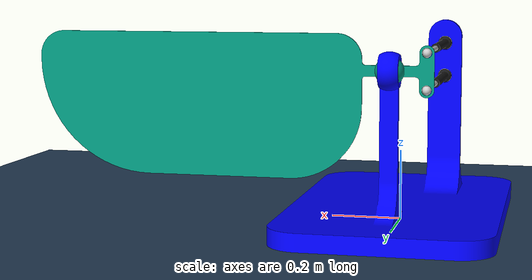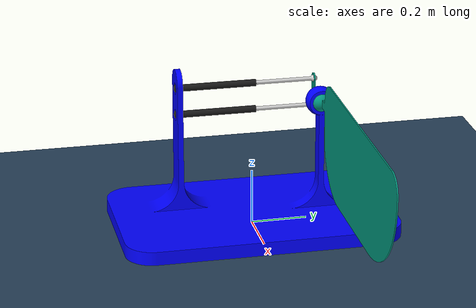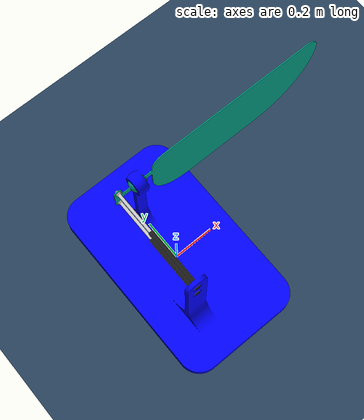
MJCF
<mujoco model="WingHinge">

  <option gravity="0 0 -1" timestep="0.005"/>

  <asset>
    <mesh file="./mesh/base.stl" />
    <mesh file="./mesh/wing.stl" />
    <mesh file="./mesh/actuator_base.stl" />
    <mesh file="./mesh/actuator_pushrod.stl" />

    <material name="base_color" rgba="0 0 1 1" />
    <material name="wing_color" rgba="0.0 0.6 0.5 1" />
    <material name="actuator_rod_color" rgba="0.8 0.8 0.8 1" />
    <material name="actuator_base_color" rgba="0.1 0.1 0.1 1" />

    <texture name="grid" type="2d" builtin="checker" width="512" height="512" rgb1=".1 .2 .3" rgb2=".2 .3 .4"/>
    <material name="grid" texture="grid" texrepeat="10 10" texuniform="true" reflectance=".2"/>
  </asset>

  <worldbody>
    <geom name="floor" size="0 0 .05" type="plane" material="grid" condim="3"/>
    <light name="spotlight" mode="targetbodycom" target="base" diffuse="0.8 0.8 0.8" specular="0.2 0.2 0.2"
        pos="0 -20 20" cutoff="20"/>
    <body name="base" pos="0 0 0">
        <freejoint name="base_joint"/>
        <geom name="base_mesh" type="mesh" mesh="base" pos="0 0 0" contype="1" conaffinity="1" material="base_color"/>
        <body name="actuator_base_lower" pos="-0.10 -0.265 0.40">
            <joint name="actuator_base_lower" type="ball" pos="0 0 0" stiffness="0.0" damping="0.0" />
            <geom name="actuator_base_lower_mesh" type="mesh" mesh="actuator_base" pos="0 0 0" contype="2" conaffinity="2"
                material="actuator_base_color"/>
            <body name="actuator_rod_lower" pos="0 0.22750 0">
                <joint name="actuator_lower_slider" type="slide" pos="0 0 0 " axis="0 1 0" range="-1 1" limited="true" springref="0"/>
                <geom name="actuator_rod_lower_mesh" type="mesh" mesh="actuator_pushrod" pos="0 0 0" contype="4"
                    conaffinity="4" material="actuator_rod_color" />
            </body>
        </body>
        <body name="actuator_base_upper" pos="-0.10 -0.265 0.50">
            <joint name="actuator_base_upper" type="ball" pos="0 0 0" stiffness="0.0" damping="0.0" />
            <geom name="actuator_base_upper_mesh" type="mesh" mesh="actuator_base" pos="0 0 0" contype="8" conaffinity="8"
                material="actuator_base_color"/>
            <body name="actuator_rod_upper" pos="0 0.22750 0">
                <joint name="actuator_upper_slider" type="slide" pos="0 0 0 " axis="0 1 0" range="-1 1" limited="true" springref="0"/>
                <geom name="actuator_rod_upper_mesh" type="mesh" mesh="actuator_pushrod" pos="0 0 0" contype="16"
                    conaffinity="16" material="actuator_rod_color" />
            </body>
        </body>
        <body name="wing" pos="0.0 0.25 0.45">
            <joint name="wing_joint_z" type="hinge" pos="0 0 0" axis="0 0 1" stiffness="0.0" damping="0.0"/>
            <joint name="wing_joint_x" type="hinge" pos="0 0 0" axis="1 0 0" stiffness="0.0" damping="0.0"/>
            <geom name="wing_mesh" type="mesh" mesh="wing" pos="0 0 0" euler="90 0 0" contype="32" conaffinity="32"
                material="wing_color"/>
            <inertial pos="0 0 0" mass="0.01" diaginertia="0.01 0.01 0.01"/>
        </body>
    </body>
  </worldbody>

  <equality>
      <connect name="connect_rod_upper_to_wing" active="true" body1="wing" body2="actuator_rod_upper"
          anchor="-0.1 0.0  0.05" solref="0.01 1" />
      <connect name="connect_rod_lower_to_wing" active="true" body1="wing" body2="actuator_rod_lower"
          anchor="-0.1 0.0 -0.05" solref="0.01 1" />
  </equality>

  <actuator>
      <motor name="lower_motor" joint="actuator_lower_slider" forcelimited="true" forcerange="-20000 20000"/>
      <position name="lower_position_servo" joint="actuator_lower_slider" kp="30000" />
      <velocity name="lower_velocity_servo" joint="actuator_lower_slider" kv="20" />
      <motor name="upper_motor" joint="actuator_upper_slider" forcelimited="true" forcerange="-20000 20000"/>
      <position name="upper_position_servo" joint="actuator_upper_slider" kp="30000" />
      <velocity name="upper_velocity_servo" joint="actuator_upper_slider" kv="20" />
  </actuator>

</mujoco>
